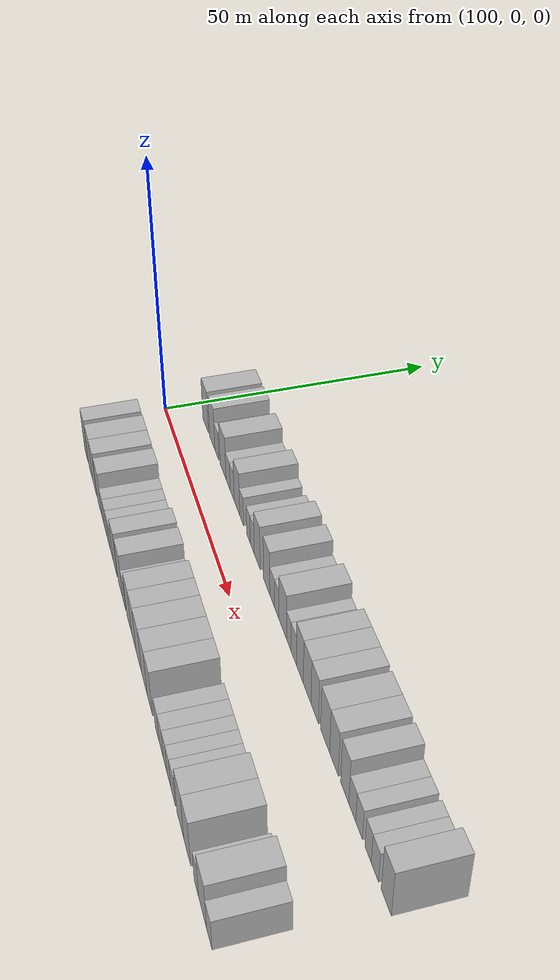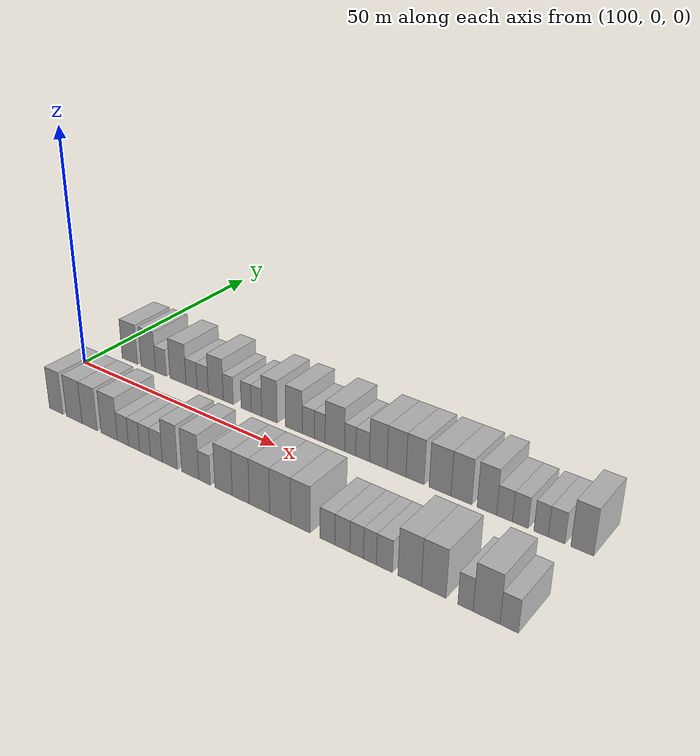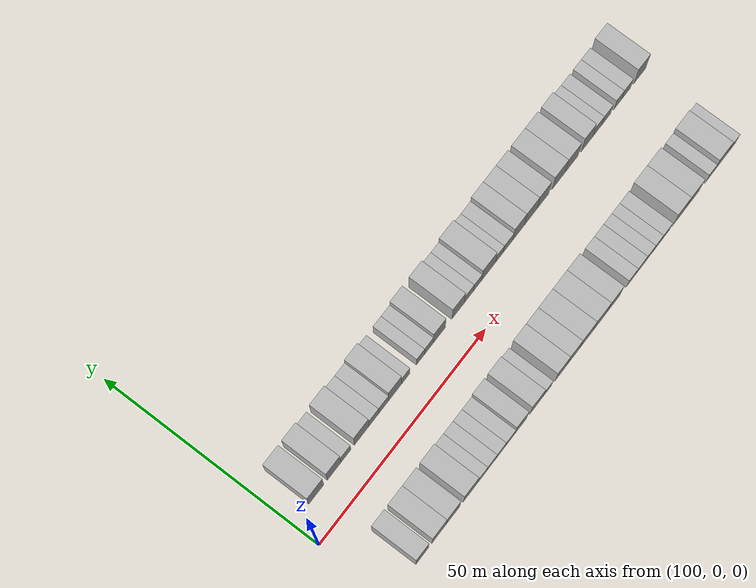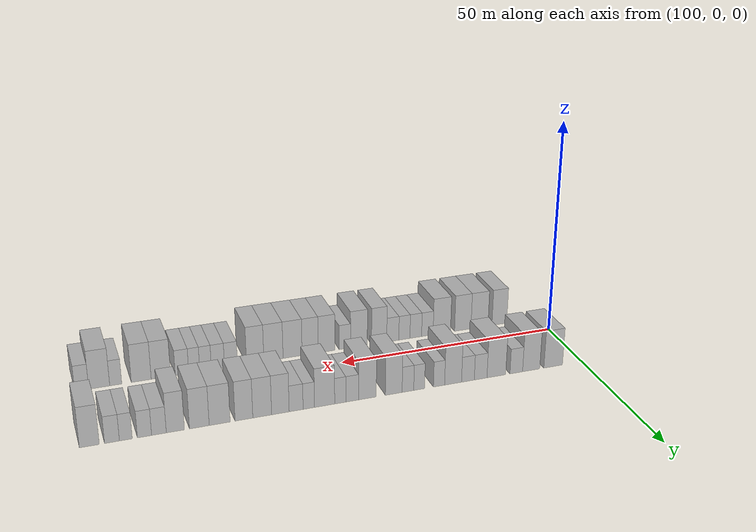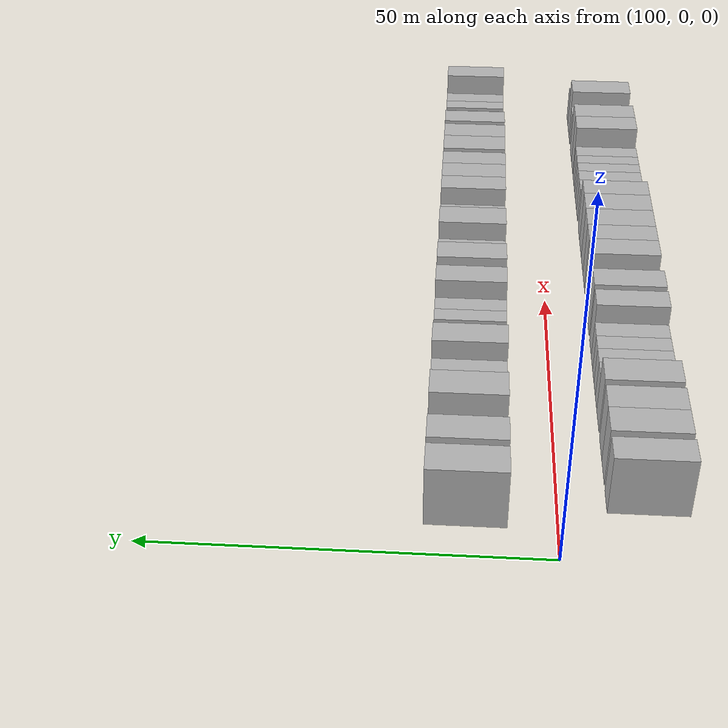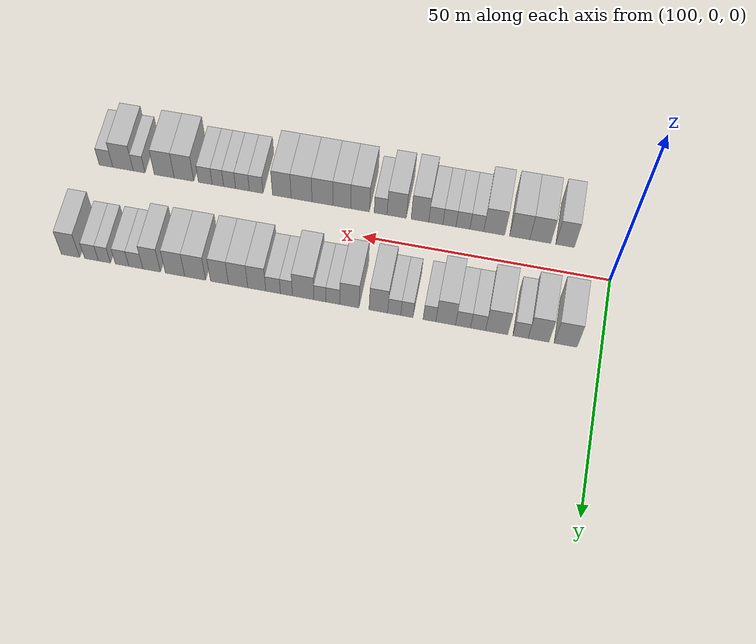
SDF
<sdf version="1.6">
 <world name="default">
  <model name="building_28">
   <static>1</static>
   <pose>106.9206 11.0000 0 0.000000 0.000000 1.570796</pose>
   <link name="link">
    <pose>0 0 4.50 0 0 0</pose>
    <collision name="collision"><geometry><box><size>10.0000 4.4664 9.0000</size></box></geometry></collision>
    <visual name="visual">
     <cast_shadows>0</cast_shadows>
     <geometry><box><size>10.0000 4.4664 9.0000</size></box></geometry>
     <material>
      <script>
       <uri>model://HANNAS_wall/materials/scripts</uri>
       <uri>model://HANNAS_wall/materials/textures</uri>
       <name>vrc/HANNAS_wall</name>
      </script>
     </material>
    </visual>
   </link>
  </model>
  <model name="building_29">
   <static>1</static>
   <pose>112.1940 11.0000 0 0.000000 0.000000 1.570796</pose>
   <link name="link">
    <pose>0 0 4.50 0 0 0</pose>
    <collision name="collision"><geometry><box><size>10.0000 4.0805 9.0000</size></box></geometry></collision>
    <visual name="visual">
     <cast_shadows>0</cast_shadows>
     <geometry><box><size>10.0000 4.0805 9.0000</size></box></geometry>
     <material>
      <script>
       <uri>model://HANNAS_wall/materials/scripts</uri>
       <uri>model://HANNAS_wall/materials/textures</uri>
       <name>vrc/HANNAS_wall</name>
      </script>
     </material>
    </visual>
   </link>
  </model>
  <model name="building_30">
   <static>1</static>
   <pose>115.7216 11.0000 0 0.000000 0.000000 1.570796</pose>
   <link name="link">
    <pose>0 0 3.00 0 0 0</pose>
    <collision name="collision"><geometry><box><size>10.0000 2.9746 6.0000</size></box></geometry></collision>
    <visual name="visual">
     <cast_shadows>0</cast_shadows>
     <geometry><box><size>10.0000 2.9746 6.0000</size></box></geometry>
     <material>
      <script>
       <uri>model://HANNAS_wall/materials/scripts</uri>
       <uri>model://HANNAS_wall/materials/textures</uri>
       <name>vrc/HANNAS_wall</name>
      </script>
     </material>
    </visual>
   </link>
  </model>
  <model name="building_31">
   <static>1</static>
   <pose>120.4012 11.0000 0 0.000000 0.000000 1.570796</pose>
   <link name="link">
    <pose>0 0 4.50 0 0 0</pose>
    <collision name="collision"><geometry><box><size>10.0000 4.3846 9.0000</size></box></geometry></collision>
    <visual name="visual">
     <cast_shadows>0</cast_shadows>
     <geometry><box><size>10.0000 4.3846 9.0000</size></box></geometry>
     <material>
      <script>
       <uri>model://HANNAS_wall/materials/scripts</uri>
       <uri>model://HANNAS_wall/materials/textures</uri>
       <name>vrc/HANNAS_wall</name>
      </script>
     </material>
    </visual>
   </link>
  </model>
  <model name="building_32">
   <static>1</static>
   <pose>124.0630 11.0000 0 0.000000 0.000000 1.570796</pose>
   <link name="link">
    <pose>0 0 3.00 0 0 0</pose>
    <collision name="collision"><geometry><box><size>10.0000 2.9389 6.0000</size></box></geometry></collision>
    <visual name="visual">
     <cast_shadows>0</cast_shadows>
     <geometry><box><size>10.0000 2.9389 6.0000</size></box></geometry>
     <material>
      <script>
       <uri>model://HANNAS_wall/materials/scripts</uri>
       <uri>model://HANNAS_wall/materials/textures</uri>
       <name>vrc/HANNAS_wall</name>
      </script>
     </material>
    </visual>
   </link>
  </model>
  <model name="building_33">
   <static>1</static>
   <pose>127.0050 11.0000 0 0.000000 0.000000 1.570796</pose>
   <link name="link">
    <pose>0 0 3.00 0 0 0</pose>
    <collision name="collision"><geometry><box><size>10.0000 2.9452 6.0000</size></box></geometry></collision>
    <visual name="visual">
     <cast_shadows>0</cast_shadows>
     <geometry><box><size>10.0000 2.9452 6.0000</size></box></geometry>
     <material>
      <script>
       <uri>model://HANNAS_wall/materials/scripts</uri>
       <uri>model://HANNAS_wall/materials/textures</uri>
       <name>vrc/HANNAS_wall</name>
      </script>
     </material>
    </visual>
   </link>
  </model>
  <model name="building_34">
   <static>1</static>
   <pose>130.4113 11.0000 0 0.000000 0.000000 1.570796</pose>
   <link name="link">
    <pose>0 0 4.50 0 0 0</pose>
    <collision name="collision"><geometry><box><size>10.0000 3.8673 9.0000</size></box></geometry></collision>
    <visual name="visual">
     <cast_shadows>0</cast_shadows>
     <geometry><box><size>10.0000 3.8673 9.0000</size></box></geometry>
     <material>
      <script>
       <uri>model://HANNAS_wall/materials/scripts</uri>
       <uri>model://HANNAS_wall/materials/textures</uri>
       <name>vrc/HANNAS_wall</name>
      </script>
     </material>
    </visual>
   </link>
  </model>
  <model name="building_35">
   <static>1</static>
   <pose>133.6094 11.0000 0 0.000000 0.000000 1.570796</pose>
   <link name="link">
    <pose>0 0 3.00 0 0 0</pose>
    <collision name="collision"><geometry><box><size>10.0000 2.5289 6.0000</size></box></geometry></collision>
    <visual name="visual">
     <cast_shadows>0</cast_shadows>
     <geometry><box><size>10.0000 2.5289 6.0000</size></box></geometry>
     <material>
      <script>
       <uri>model://HANNAS_wall/materials/scripts</uri>
       <uri>model://HANNAS_wall/materials/textures</uri>
       <name>vrc/HANNAS_wall</name>
      </script>
     </material>
    </visual>
   </link>
  </model>
  <model name="building_36">
   <static>1</static>
   <pose>138.0905 11.0000 0 0.000000 0.000000 1.570796</pose>
   <link name="link">
    <pose>0 0 3.00 0 0 0</pose>
    <collision name="collision"><geometry><box><size>10.0000 2.4332 6.0000</size></box></geometry></collision>
    <visual name="visual">
     <cast_shadows>0</cast_shadows>
     <geometry><box><size>10.0000 2.4332 6.0000</size></box></geometry>
     <material>
      <script>
       <uri>model://HANNAS_wall/materials/scripts</uri>
       <uri>model://HANNAS_wall/materials/textures</uri>
       <name>vrc/HANNAS_wall</name>
      </script>
     </material>
    </visual>
   </link>
  </model>
  <model name="building_37">
   <static>1</static>
   <pose>140.6060 11.0000 0 0.000000 0.000000 1.570796</pose>
   <link name="link">
    <pose>0 0 3.00 0 0 0</pose>
    <collision name="collision"><geometry><box><size>10.0000 2.5978 6.0000</size></box></geometry></collision>
    <visual name="visual">
     <cast_shadows>0</cast_shadows>
     <geometry><box><size>10.0000 2.5978 6.0000</size></box></geometry>
     <material>
      <script>
       <uri>model://HANNAS_wall/materials/scripts</uri>
       <uri>model://HANNAS_wall/materials/textures</uri>
       <name>vrc/HANNAS_wall</name>
      </script>
     </material>
    </visual>
   </link>
  </model>
  <model name="building_38">
   <static>1</static>
   <pose>143.7648 11.0000 0 0.000000 0.000000 1.570796</pose>
   <link name="link">
    <pose>0 0 4.50 0 0 0</pose>
    <collision name="collision"><geometry><box><size>10.0000 3.7199 9.0000</size></box></geometry></collision>
    <visual name="visual">
     <cast_shadows>0</cast_shadows>
     <geometry><box><size>10.0000 3.7199 9.0000</size></box></geometry>
     <material>
      <script>
       <uri>model://HANNAS_wall/materials/scripts</uri>
       <uri>model://HANNAS_wall/materials/textures</uri>
       <name>vrc/HANNAS_wall</name>
      </script>
     </material>
    </visual>
   </link>
  </model>
  <model name="building_39">
   <static>1</static>
   <pose>149.5519 11.0000 0 0.000000 0.000000 1.570796</pose>
   <link name="link">
    <pose>0 0 4.50 0 0 0</pose>
    <collision name="collision"><geometry><box><size>10.0000 3.8543 9.0000</size></box></geometry></collision>
    <visual name="visual">
     <cast_shadows>0</cast_shadows>
     <geometry><box><size>10.0000 3.8543 9.0000</size></box></geometry>
     <material>
      <script>
       <uri>model://HANNAS_wall/materials/scripts</uri>
       <uri>model://HANNAS_wall/materials/textures</uri>
       <name>vrc/HANNAS_wall</name>
      </script>
     </material>
    </visual>
   </link>
  </model>
  <model name="building_40">
   <static>1</static>
   <pose>152.8658 11.0000 0 0.000000 0.000000 1.570796</pose>
   <link name="link">
    <pose>0 0 3.00 0 0 0</pose>
    <collision name="collision"><geometry><box><size>10.0000 2.7734 6.0000</size></box></geometry></collision>
    <visual name="visual">
     <cast_shadows>0</cast_shadows>
     <geometry><box><size>10.0000 2.7734 6.0000</size></box></geometry>
     <material>
      <script>
       <uri>model://HANNAS_wall/materials/scripts</uri>
       <uri>model://HANNAS_wall/materials/textures</uri>
       <name>vrc/HANNAS_wall</name>
      </script>
     </material>
    </visual>
   </link>
  </model>
  <model name="building_41">
   <static>1</static>
   <pose>155.4579 11.0000 0 0.000000 0.000000 1.570796</pose>
   <link name="link">
    <pose>0 0 3.00 0 0 0</pose>
    <collision name="collision"><geometry><box><size>10.0000 2.4107 6.0000</size></box></geometry></collision>
    <visual name="visual">
     <cast_shadows>0</cast_shadows>
     <geometry><box><size>10.0000 2.4107 6.0000</size></box></geometry>
     <material>
      <script>
       <uri>model://HANNAS_wall/materials/scripts</uri>
       <uri>model://HANNAS_wall/materials/textures</uri>
       <name>vrc/HANNAS_wall</name>
      </script>
     </material>
    </visual>
   </link>
  </model>
  <model name="building_42">
   <static>1</static>
   <pose>158.8266 11.0000 0 0.000000 0.000000 1.570796</pose>
   <link name="link">
    <pose>0 0 4.50 0 0 0</pose>
    <collision name="collision"><geometry><box><size>10.0000 4.3266 9.0000</size></box></geometry></collision>
    <visual name="visual">
     <cast_shadows>0</cast_shadows>
     <geometry><box><size>10.0000 4.3266 9.0000</size></box></geometry>
     <material>
      <script>
       <uri>model://HANNAS_wall/materials/scripts</uri>
       <uri>model://HANNAS_wall/materials/textures</uri>
       <name>vrc/HANNAS_wall</name>
      </script>
     </material>
    </visual>
   </link>
  </model>
  <model name="building_43">
   <static>1</static>
   <pose>162.2011 11.0000 0 0.000000 0.000000 1.570796</pose>
   <link name="link">
    <pose>0 0 3.00 0 0 0</pose>
    <collision name="collision"><geometry><box><size>10.0000 2.4226 6.0000</size></box></geometry></collision>
    <visual name="visual">
     <cast_shadows>0</cast_shadows>
     <geometry><box><size>10.0000 2.4226 6.0000</size></box></geometry>
     <material>
      <script>
       <uri>model://HANNAS_wall/materials/scripts</uri>
       <uri>model://HANNAS_wall/materials/textures</uri>
       <name>vrc/HANNAS_wall</name>
      </script>
     </material>
    </visual>
   </link>
  </model>
  <model name="building_44">
   <static>1</static>
   <pose>164.8834 11.0000 0 0.000000 0.000000 1.570796</pose>
   <link name="link">
    <pose>0 0 3.00 0 0 0</pose>
    <collision name="collision"><geometry><box><size>10.0000 2.9419 6.0000</size></box></geometry></collision>
    <visual name="visual">
     <cast_shadows>0</cast_shadows>
     <geometry><box><size>10.0000 2.9419 6.0000</size></box></geometry>
     <material>
      <script>
       <uri>model://HANNAS_wall/materials/scripts</uri>
       <uri>model://HANNAS_wall/materials/textures</uri>
       <name>vrc/HANNAS_wall</name>
      </script>
     </material>
    </visual>
   </link>
  </model>
  <model name="building_45">
   <static>1</static>
   <pose>168.1910 11.0000 0 0.000000 0.000000 1.570796</pose>
   <link name="link">
    <pose>0 0 4.50 0 0 0</pose>
    <collision name="collision"><geometry><box><size>10.0000 3.6733 9.0000</size></box></geometry></collision>
    <visual name="visual">
     <cast_shadows>0</cast_shadows>
     <geometry><box><size>10.0000 3.6733 9.0000</size></box></geometry>
     <material>
      <script>
       <uri>model://HANNAS_wall/materials/scripts</uri>
       <uri>model://HANNAS_wall/materials/textures</uri>
       <name>vrc/HANNAS_wall</name>
      </script>
     </material>
    </visual>
   </link>
  </model>
  <model name="building_46">
   <static>1</static>
   <pose>171.9816 11.0000 0 0.000000 0.000000 1.570796</pose>
   <link name="link">
    <pose>0 0 4.50 0 0 0</pose>
    <collision name="collision"><geometry><box><size>10.0000 3.9079 9.0000</size></box></geometry></collision>
    <visual name="visual">
     <cast_shadows>0</cast_shadows>
     <geometry><box><size>10.0000 3.9079 9.0000</size></box></geometry>
     <material>
      <script>
       <uri>model://HANNAS_wall/materials/scripts</uri>
       <uri>model://HANNAS_wall/materials/textures</uri>
       <name>vrc/HANNAS_wall</name>
      </script>
     </material>
    </visual>
   </link>
  </model>
  <model name="building_47">
   <static>1</static>
   <pose>175.7639 11.0000 0 0.000000 0.000000 1.570796</pose>
   <link name="link">
    <pose>0 0 4.50 0 0 0</pose>
    <collision name="collision"><geometry><box><size>10.0000 3.6567 9.0000</size></box></geometry></collision>
    <visual name="visual">
     <cast_shadows>0</cast_shadows>
     <geometry><box><size>10.0000 3.6567 9.0000</size></box></geometry>
     <material>
      <script>
       <uri>model://HANNAS_wall/materials/scripts</uri>
       <uri>model://HANNAS_wall/materials/textures</uri>
       <name>vrc/HANNAS_wall</name>
      </script>
     </material>
    </visual>
   </link>
  </model>
  <model name="building_48">
   <static>1</static>
   <pose>180.7268 11.0000 0 0.000000 0.000000 1.570796</pose>
   <link name="link">
    <pose>0 0 4.50 0 0 0</pose>
    <collision name="collision"><geometry><box><size>10.0000 4.2690 9.0000</size></box></geometry></collision>
    <visual name="visual">
     <cast_shadows>0</cast_shadows>
     <geometry><box><size>10.0000 4.2690 9.0000</size></box></geometry>
     <material>
      <script>
       <uri>model://HANNAS_wall/materials/scripts</uri>
       <uri>model://HANNAS_wall/materials/textures</uri>
       <name>vrc/HANNAS_wall</name>
      </script>
     </material>
    </visual>
   </link>
  </model>
  <model name="building_49">
   <static>1</static>
   <pose>184.8466 11.0000 0 0.000000 0.000000 1.570796</pose>
   <link name="link">
    <pose>0 0 4.50 0 0 0</pose>
    <collision name="collision"><geometry><box><size>10.0000 3.9706 9.0000</size></box></geometry></collision>
    <visual name="visual">
     <cast_shadows>0</cast_shadows>
     <geometry><box><size>10.0000 3.9706 9.0000</size></box></geometry>
     <material>
      <script>
       <uri>model://HANNAS_wall/materials/scripts</uri>
       <uri>model://HANNAS_wall/materials/textures</uri>
       <name>vrc/HANNAS_wall</name>
      </script>
     </material>
    </visual>
   </link>
  </model>
  <model name="building_50">
   <static>1</static>
   <pose>189.6400 11.0000 0 0.000000 0.000000 1.570796</pose>
   <link name="link">
    <pose>0 0 4.50 0 0 0</pose>
    <collision name="collision"><geometry><box><size>10.0000 3.6162 9.0000</size></box></geometry></collision>
    <visual name="visual">
     <cast_shadows>0</cast_shadows>
     <geometry><box><size>10.0000 3.6162 9.0000</size></box></geometry>
     <material>
      <script>
       <uri>model://HANNAS_wall/materials/scripts</uri>
       <uri>model://HANNAS_wall/materials/textures</uri>
       <name>vrc/HANNAS_wall</name>
      </script>
     </material>
    </visual>
   </link>
  </model>
  <model name="building_51">
   <static>1</static>
   <pose>192.8970 11.0000 0 0.000000 0.000000 1.570796</pose>
   <link name="link">
    <pose>0 0 3.00 0 0 0</pose>
    <collision name="collision"><geometry><box><size>10.0000 2.8980 6.0000</size></box></geometry></collision>
    <visual name="visual">
     <cast_shadows>0</cast_shadows>
     <geometry><box><size>10.0000 2.8980 6.0000</size></box></geometry>
     <material>
      <script>
       <uri>model://HANNAS_wall/materials/scripts</uri>
       <uri>model://HANNAS_wall/materials/textures</uri>
       <name>vrc/HANNAS_wall</name>
      </script>
     </material>
    </visual>
   </link>
  </model>
  <model name="building_52">
   <static>1</static>
   <pose>195.7390 11.0000 0 0.000000 0.000000 1.570796</pose>
   <link name="link">
    <pose>0 0 3.00 0 0 0</pose>
    <collision name="collision"><geometry><box><size>10.0000 2.7860 6.0000</size></box></geometry></collision>
    <visual name="visual">
     <cast_shadows>0</cast_shadows>
     <geometry><box><size>10.0000 2.7860 6.0000</size></box></geometry>
     <material>
      <script>
       <uri>model://HANNAS_wall/materials/scripts</uri>
       <uri>model://HANNAS_wall/materials/textures</uri>
       <name>vrc/HANNAS_wall</name>
      </script>
     </material>
    </visual>
   </link>
  </model>
  <model name="building_53">
   <static>1</static>
   <pose>199.3828 11.0000 0 0.000000 0.000000 1.570796</pose>
   <link name="link">
    <pose>0 0 3.00 0 0 0</pose>
    <collision name="collision"><geometry><box><size>10.0000 2.5016 6.0000</size></box></geometry></collision>
    <visual name="visual">
     <cast_shadows>0</cast_shadows>
     <geometry><box><size>10.0000 2.5016 6.0000</size></box></geometry>
     <material>
      <script>
       <uri>model://HANNAS_wall/materials/scripts</uri>
       <uri>model://HANNAS_wall/materials/textures</uri>
       <name>vrc/HANNAS_wall</name>
      </script>
     </material>
    </visual>
   </link>
  </model>
  <model name="building_54">
   <static>1</static>
   <pose>202.0715 11.0000 0 0.000000 0.000000 1.570796</pose>
   <link name="link">
    <pose>0 0 3.00 0 0 0</pose>
    <collision name="collision"><geometry><box><size>10.0000 2.8758 6.0000</size></box></geometry></collision>
    <visual name="visual">
     <cast_shadows>0</cast_shadows>
     <geometry><box><size>10.0000 2.8758 6.0000</size></box></geometry>
     <material>
      <script>
       <uri>model://HANNAS_wall/materials/scripts</uri>
       <uri>model://HANNAS_wall/materials/textures</uri>
       <name>vrc/HANNAS_wall</name>
      </script>
     </material>
    </visual>
   </link>
  </model>
  <model name="building_55">
   <static>1</static>
   <pose>206.4218 11.0000 0 0.000000 0.000000 1.570796</pose>
   <link name="link">
    <pose>0 0 4.50 0 0 0</pose>
    <collision name="collision"><geometry><box><size>10.0000 3.8250 9.0000</size></box></geometry></collision>
    <visual name="visual">
     <cast_shadows>0</cast_shadows>
     <geometry><box><size>10.0000 3.8250 9.0000</size></box></geometry>
     <material>
      <script>
       <uri>model://HANNAS_wall/materials/scripts</uri>
       <uri>model://HANNAS_wall/materials/textures</uri>
       <name>vrc/HANNAS_wall</name>
      </script>
     </material>
    </visual>
   </link>
  </model>
  <model name="building_83">
   <static>1</static>
   <pose>109.6967 -11.0000 0 0.000000 0.000000 1.570796</pose>
   <link name="link">
    <pose>0 0 4.50 0 0 0</pose>
    <collision name="collision"><geometry><box><size>10.0000 3.7631 9.0000</size></box></geometry></collision>
    <visual name="visual">
     <cast_shadows>0</cast_shadows>
     <geometry><box><size>10.0000 3.7631 9.0000</size></box></geometry>
     <material>
      <script>
       <uri>model://HANNAS_wall/materials/scripts</uri>
       <uri>model://HANNAS_wall/materials/textures</uri>
       <name>vrc/HANNAS_wall</name>
      </script>
     </material>
    </visual>
   </link>
  </model>
  <model name="building_84">
   <static>1</static>
   <pose>114.7164 -11.0000 0 0.000000 0.000000 1.570796</pose>
   <link name="link">
    <pose>0 0 4.50 0 0 0</pose>
    <collision name="collision"><geometry><box><size>10.0000 4.2762 9.0000</size></box></geometry></collision>
    <visual name="visual">
     <cast_shadows>0</cast_shadows>
     <geometry><box><size>10.0000 4.2762 9.0000</size></box></geometry>
     <material>
      <script>
       <uri>model://HANNAS_wall/materials/scripts</uri>
       <uri>model://HANNAS_wall/materials/textures</uri>
       <name>vrc/HANNAS_wall</name>
      </script>
     </material>
    </visual>
   </link>
  </model>
  <model name="building_85">
   <static>1</static>
   <pose>118.9021 -11.0000 0 0.000000 0.000000 1.570796</pose>
   <link name="link">
    <pose>0 0 4.50 0 0 0</pose>
    <collision name="collision"><geometry><box><size>10.0000 4.0952 9.0000</size></box></geometry></collision>
    <visual name="visual">
     <cast_shadows>0</cast_shadows>
     <geometry><box><size>10.0000 4.0952 9.0000</size></box></geometry>
     <material>
      <script>
       <uri>model://HANNAS_wall/materials/scripts</uri>
       <uri>model://HANNAS_wall/materials/textures</uri>
       <name>vrc/HANNAS_wall</name>
      </script>
     </material>
    </visual>
   </link>
  </model>
  <model name="building_86">
   <static>1</static>
   <pose>124.0955 -11.0000 0 0.000000 0.000000 1.570796</pose>
   <link name="link">
    <pose>0 0 4.50 0 0 0</pose>
    <collision name="collision"><geometry><box><size>10.0000 4.2916 9.0000</size></box></geometry></collision>
    <visual name="visual">
     <cast_shadows>0</cast_shadows>
     <geometry><box><size>10.0000 4.2916 9.0000</size></box></geometry>
     <material>
      <script>
       <uri>model://HANNAS_wall/materials/scripts</uri>
       <uri>model://HANNAS_wall/materials/textures</uri>
       <name>vrc/HANNAS_wall</name>
      </script>
     </material>
    </visual>
   </link>
  </model>
  <model name="building_87">
   <static>1</static>
   <pose>127.6467 -11.0000 0 0.000000 0.000000 1.570796</pose>
   <link name="link">
    <pose>0 0 3.00 0 0 0</pose>
    <collision name="collision"><geometry><box><size>10.0000 2.8108 6.0000</size></box></geometry></collision>
    <visual name="visual">
     <cast_shadows>0</cast_shadows>
     <geometry><box><size>10.0000 2.8108 6.0000</size></box></geometry>
     <material>
      <script>
       <uri>model://HANNAS_wall/materials/scripts</uri>
       <uri>model://HANNAS_wall/materials/textures</uri>
       <name>vrc/HANNAS_wall</name>
      </script>
     </material>
    </visual>
   </link>
  </model>
  <model name="building_88">
   <static>1</static>
   <pose>130.4687 -11.0000 0 0.000000 0.000000 1.570796</pose>
   <link name="link">
    <pose>0 0 3.00 0 0 0</pose>
    <collision name="collision"><geometry><box><size>10.0000 2.8333 6.0000</size></box></geometry></collision>
    <visual name="visual">
     <cast_shadows>0</cast_shadows>
     <geometry><box><size>10.0000 2.8333 6.0000</size></box></geometry>
     <material>
      <script>
       <uri>model://HANNAS_wall/materials/scripts</uri>
       <uri>model://HANNAS_wall/materials/textures</uri>
       <name>vrc/HANNAS_wall</name>
      </script>
     </material>
    </visual>
   </link>
  </model>
  <model name="building_89">
   <static>1</static>
   <pose>133.2295 -11.0000 0 0.000000 0.000000 1.570796</pose>
   <link name="link">
    <pose>0 0 3.00 0 0 0</pose>
    <collision name="collision"><geometry><box><size>10.0000 2.6882 6.0000</size></box></geometry></collision>
    <visual name="visual">
     <cast_shadows>0</cast_shadows>
     <geometry><box><size>10.0000 2.6882 6.0000</size></box></geometry>
     <material>
      <script>
       <uri>model://HANNAS_wall/materials/scripts</uri>
       <uri>model://HANNAS_wall/materials/textures</uri>
       <name>vrc/HANNAS_wall</name>
      </script>
     </material>
    </visual>
   </link>
  </model>
  <model name="building_90">
   <static>1</static>
   <pose>136.0279 -11.0000 0 0.000000 0.000000 1.570796</pose>
   <link name="link">
    <pose>0 0 3.00 0 0 0</pose>
    <collision name="collision"><geometry><box><size>10.0000 2.9087 6.0000</size></box></geometry></collision>
    <visual name="visual">
     <cast_shadows>0</cast_shadows>
     <geometry><box><size>10.0000 2.9087 6.0000</size></box></geometry>
     <material>
      <script>
       <uri>model://HANNAS_wall/materials/scripts</uri>
       <uri>model://HANNAS_wall/materials/textures</uri>
       <name>vrc/HANNAS_wall</name>
      </script>
     </material>
    </visual>
   </link>
  </model>
  <model name="building_91">
   <static>1</static>
   <pose>139.2993 -11.0000 0 0.000000 0.000000 1.570796</pose>
   <link name="link">
    <pose>0 0 4.50 0 0 0</pose>
    <collision name="collision"><geometry><box><size>10.0000 3.6340 9.0000</size></box></geometry></collision>
    <visual name="visual">
     <cast_shadows>0</cast_shadows>
     <geometry><box><size>10.0000 3.6340 9.0000</size></box></geometry>
     <material>
      <script>
       <uri>model://HANNAS_wall/materials/scripts</uri>
       <uri>model://HANNAS_wall/materials/textures</uri>
       <name>vrc/HANNAS_wall</name>
      </script>
     </material>
    </visual>
   </link>
  </model>
  <model name="building_92">
   <static>1</static>
   <pose>144.0993 -11.0000 0 0.000000 0.000000 1.570796</pose>
   <link name="link">
    <pose>0 0 4.50 0 0 0</pose>
    <collision name="collision"><geometry><box><size>10.0000 3.9660 9.0000</size></box></geometry></collision>
    <visual name="visual">
     <cast_shadows>0</cast_shadows>
     <geometry><box><size>10.0000 3.9660 9.0000</size></box></geometry>
     <material>
      <script>
       <uri>model://HANNAS_wall/materials/scripts</uri>
       <uri>model://HANNAS_wall/materials/textures</uri>
       <name>vrc/HANNAS_wall</name>
      </script>
     </material>
    </visual>
   </link>
  </model>
  <model name="building_93">
   <static>1</static>
   <pose>147.4148 -11.0000 0 0.000000 0.000000 1.570796</pose>
   <link name="link">
    <pose>0 0 3.00 0 0 0</pose>
    <collision name="collision"><geometry><box><size>10.0000 2.6650 6.0000</size></box></geometry></collision>
    <visual name="visual">
     <cast_shadows>0</cast_shadows>
     <geometry><box><size>10.0000 2.6650 6.0000</size></box></geometry>
     <material>
      <script>
       <uri>model://HANNAS_wall/materials/scripts</uri>
       <uri>model://HANNAS_wall/materials/textures</uri>
       <name>vrc/HANNAS_wall</name>
      </script>
     </material>
    </visual>
   </link>
  </model>
  <model name="building_94">
   <static>1</static>
   <pose>151.6881 -11.0000 0 0.000000 0.000000 1.570796</pose>
   <link name="link">
    <pose>0 0 4.50 0 0 0</pose>
    <collision name="collision"><geometry><box><size>10.0000 3.8816 9.0000</size></box></geometry></collision>
    <visual name="visual">
     <cast_shadows>0</cast_shadows>
     <geometry><box><size>10.0000 3.8816 9.0000</size></box></geometry>
     <material>
      <script>
       <uri>model://HANNAS_wall/materials/scripts</uri>
       <uri>model://HANNAS_wall/materials/textures</uri>
       <name>vrc/HANNAS_wall</name>
      </script>
     </material>
    </visual>
   </link>
  </model>
  <model name="building_95">
   <static>1</static>
   <pose>155.4900 -11.0000 0 0.000000 0.000000 1.570796</pose>
   <link name="link">
    <pose>0 0 4.50 0 0 0</pose>
    <collision name="collision"><geometry><box><size>10.0000 3.7224 9.0000</size></box></geometry></collision>
    <visual name="visual">
     <cast_shadows>0</cast_shadows>
     <geometry><box><size>10.0000 3.7224 9.0000</size></box></geometry>
     <material>
      <script>
       <uri>model://HANNAS_wall/materials/scripts</uri>
       <uri>model://HANNAS_wall/materials/textures</uri>
       <name>vrc/HANNAS_wall</name>
      </script>
     </material>
    </visual>
   </link>
  </model>
  <model name="building_96">
   <static>1</static>
   <pose>159.5275 -11.0000 0 0.000000 0.000000 1.570796</pose>
   <link name="link">
    <pose>0 0 4.50 0 0 0</pose>
    <collision name="collision"><geometry><box><size>10.0000 4.3525 9.0000</size></box></geometry></collision>
    <visual name="visual">
     <cast_shadows>0</cast_shadows>
     <geometry><box><size>10.0000 4.3525 9.0000</size></box></geometry>
     <material>
      <script>
       <uri>model://HANNAS_wall/materials/scripts</uri>
       <uri>model://HANNAS_wall/materials/textures</uri>
       <name>vrc/HANNAS_wall</name>
      </script>
     </material>
    </visual>
   </link>
  </model>
  <model name="building_97">
   <static>1</static>
   <pose>163.8811 -11.0000 0 0.000000 0.000000 1.570796</pose>
   <link name="link">
    <pose>0 0 4.50 0 0 0</pose>
    <collision name="collision"><geometry><box><size>10.0000 4.3547 9.0000</size></box></geometry></collision>
    <visual name="visual">
     <cast_shadows>0</cast_shadows>
     <geometry><box><size>10.0000 4.3547 9.0000</size></box></geometry>
     <material>
      <script>
       <uri>model://HANNAS_wall/materials/scripts</uri>
       <uri>model://HANNAS_wall/materials/textures</uri>
       <name>vrc/HANNAS_wall</name>
      </script>
     </material>
    </visual>
   </link>
  </model>
  <model name="building_98">
   <static>1</static>
   <pose>168.0104 -11.0000 0 0.000000 0.000000 1.570796</pose>
   <link name="link">
    <pose>0 0 4.50 0 0 0</pose>
    <collision name="collision"><geometry><box><size>10.0000 3.9039 9.0000</size></box></geometry></collision>
    <visual name="visual">
     <cast_shadows>0</cast_shadows>
     <geometry><box><size>10.0000 3.9039 9.0000</size></box></geometry>
     <material>
      <script>
       <uri>model://HANNAS_wall/materials/scripts</uri>
       <uri>model://HANNAS_wall/materials/textures</uri>
       <name>vrc/HANNAS_wall</name>
      </script>
     </material>
    </visual>
   </link>
  </model>
  <model name="building_99">
   <static>1</static>
   <pose>173.4029 -11.0000 0 0.000000 0.000000 1.570796</pose>
   <link name="link">
    <pose>0 0 3.00 0 0 0</pose>
    <collision name="collision"><geometry><box><size>10.0000 2.8810 6.0000</size></box></geometry></collision>
    <visual name="visual">
     <cast_shadows>0</cast_shadows>
     <geometry><box><size>10.0000 2.8810 6.0000</size></box></geometry>
     <material>
      <script>
       <uri>model://HANNAS_wall/materials/scripts</uri>
       <uri>model://HANNAS_wall/materials/textures</uri>
       <name>vrc/HANNAS_wall</name>
      </script>
     </material>
    </visual>
   </link>
  </model>
  <model name="building_100">
   <static>1</static>
   <pose>176.2886 -11.0000 0 0.000000 0.000000 1.570796</pose>
   <link name="link">
    <pose>0 0 3.00 0 0 0</pose>
    <collision name="collision"><geometry><box><size>10.0000 2.8906 6.0000</size></box></geometry></collision>
    <visual name="visual">
     <cast_shadows>0</cast_shadows>
     <geometry><box><size>10.0000 2.8906 6.0000</size></box></geometry>
     <material>
      <script>
       <uri>model://HANNAS_wall/materials/scripts</uri>
       <uri>model://HANNAS_wall/materials/textures</uri>
       <name>vrc/HANNAS_wall</name>
      </script>
     </material>
    </visual>
   </link>
  </model>
  <model name="building_101">
   <static>1</static>
   <pose>179.0077 -11.0000 0 0.000000 0.000000 1.570796</pose>
   <link name="link">
    <pose>0 0 3.00 0 0 0</pose>
    <collision name="collision"><geometry><box><size>10.0000 2.5475 6.0000</size></box></geometry></collision>
    <visual name="visual">
     <cast_shadows>0</cast_shadows>
     <geometry><box><size>10.0000 2.5475 6.0000</size></box></geometry>
     <material>
      <script>
       <uri>model://HANNAS_wall/materials/scripts</uri>
       <uri>model://HANNAS_wall/materials/textures</uri>
       <name>vrc/HANNAS_wall</name>
      </script>
     </material>
    </visual>
   </link>
  </model>
  <model name="building_102">
   <static>1</static>
   <pose>181.4835 -11.0000 0 0.000000 0.000000 1.570796</pose>
   <link name="link">
    <pose>0 0 3.00 0 0 0</pose>
    <collision name="collision"><geometry><box><size>10.0000 2.4041 6.0000</size></box></geometry></collision>
    <visual name="visual">
     <cast_shadows>0</cast_shadows>
     <geometry><box><size>10.0000 2.4041 6.0000</size></box></geometry>
     <material>
      <script>
       <uri>model://HANNAS_wall/materials/scripts</uri>
       <uri>model://HANNAS_wall/materials/textures</uri>
       <name>vrc/HANNAS_wall</name>
      </script>
     </material>
    </visual>
   </link>
  </model>
  <model name="building_103">
   <static>1</static>
   <pose>184.1473 -11.0000 0 0.000000 0.000000 1.570796</pose>
   <link name="link">
    <pose>0 0 3.00 0 0 0</pose>
    <collision name="collision"><geometry><box><size>10.0000 2.9235 6.0000</size></box></geometry></collision>
    <visual name="visual">
     <cast_shadows>0</cast_shadows>
     <geometry><box><size>10.0000 2.9235 6.0000</size></box></geometry>
     <material>
      <script>
       <uri>model://HANNAS_wall/materials/scripts</uri>
       <uri>model://HANNAS_wall/materials/textures</uri>
       <name>vrc/HANNAS_wall</name>
      </script>
     </material>
    </visual>
   </link>
  </model>
  <model name="building_104">
   <static>1</static>
   <pose>188.6888 -11.0000 0 0.000000 0.000000 1.570796</pose>
   <link name="link">
    <pose>0 0 4.50 0 0 0</pose>
    <collision name="collision"><geometry><box><size>10.0000 4.1594 9.0000</size></box></geometry></collision>
    <visual name="visual">
     <cast_shadows>0</cast_shadows>
     <geometry><box><size>10.0000 4.1594 9.0000</size></box></geometry>
     <material>
      <script>
       <uri>model://HANNAS_wall/materials/scripts</uri>
       <uri>model://HANNAS_wall/materials/textures</uri>
       <name>vrc/HANNAS_wall</name>
      </script>
     </material>
    </visual>
   </link>
  </model>
  <model name="building_105">
   <static>1</static>
   <pose>192.8889 -11.0000 0 0.000000 0.000000 1.570796</pose>
   <link name="link">
    <pose>0 0 4.50 0 0 0</pose>
    <collision name="collision"><geometry><box><size>10.0000 4.2409 9.0000</size></box></geometry></collision>
    <visual name="visual">
     <cast_shadows>0</cast_shadows>
     <geometry><box><size>10.0000 4.2409 9.0000</size></box></geometry>
     <material>
      <script>
       <uri>model://HANNAS_wall/materials/scripts</uri>
       <uri>model://HANNAS_wall/materials/textures</uri>
       <name>vrc/HANNAS_wall</name>
      </script>
     </material>
    </visual>
   </link>
  </model>
  <model name="building_106">
   <static>1</static>
   <pose>198.2774 -11.0000 0 0.000000 0.000000 1.570796</pose>
   <link name="link">
    <pose>0 0 3.00 0 0 0</pose>
    <collision name="collision"><geometry><box><size>10.0000 2.5360 6.0000</size></box></geometry></collision>
    <visual name="visual">
     <cast_shadows>0</cast_shadows>
     <geometry><box><size>10.0000 2.5360 6.0000</size></box></geometry>
     <material>
      <script>
       <uri>model://HANNAS_wall/materials/scripts</uri>
       <uri>model://HANNAS_wall/materials/textures</uri>
       <name>vrc/HANNAS_wall</name>
      </script>
     </material>
    </visual>
   </link>
  </model>
  <model name="building_107">
   <static>1</static>
   <pose>201.7315 -11.0000 0 0.000000 0.000000 1.570796</pose>
   <link name="link">
    <pose>0 0 4.50 0 0 0</pose>
    <collision name="collision"><geometry><box><size>10.0000 4.3721 9.0000</size></box></geometry></collision>
    <visual name="visual">
     <cast_shadows>0</cast_shadows>
     <geometry><box><size>10.0000 4.3721 9.0000</size></box></geometry>
     <material>
      <script>
       <uri>model://HANNAS_wall/materials/scripts</uri>
       <uri>model://HANNAS_wall/materials/textures</uri>
       <name>vrc/HANNAS_wall</name>
      </script>
     </material>
    </visual>
   </link>
  </model>
  <model name="building_108">
   <static>1</static>
   <pose>205.3710 -11.0000 0 0.000000 0.000000 1.570796</pose>
   <link name="link">
    <pose>0 0 3.00 0 0 0</pose>
    <collision name="collision"><geometry><box><size>10.0000 2.9069 6.0000</size></box></geometry></collision>
    <visual name="visual">
     <cast_shadows>0</cast_shadows>
     <geometry><box><size>10.0000 2.9069 6.0000</size></box></geometry>
     <material>
      <script>
       <uri>model://HANNAS_wall/materials/scripts</uri>
       <uri>model://HANNAS_wall/materials/textures</uri>
       <name>vrc/HANNAS_wall</name>
      </script>
     </material>
    </visual>
   </link>
  </model>
 </world>
</sdf>
